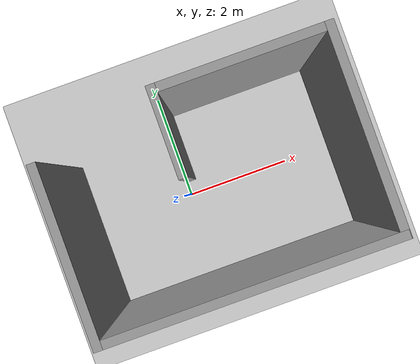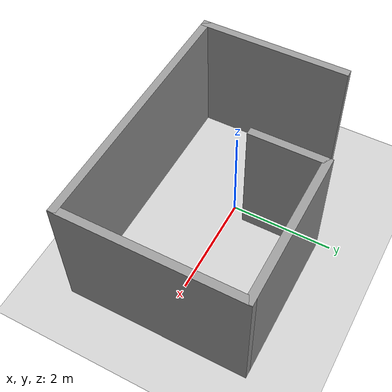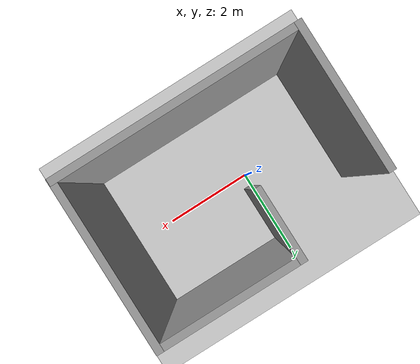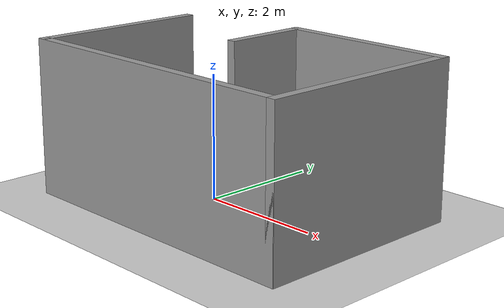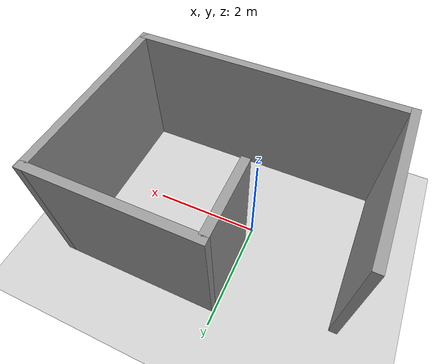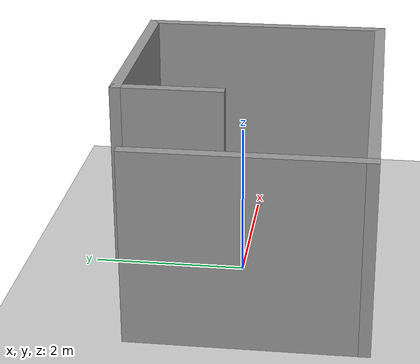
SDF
<?xml version="1.0"?>
<sdf version="1.6">
  <world name="default">

    <plugin
      filename="libgazebo_ros_factory.so"
      name="gazebo_ros_factory">
      <build_default_sdf>true</build_default_sdf>
      <robot_namespace>/</robot_namespace>
    </plugin>

    <include>
      <uri>model://ground_plane</uri>
    </include>

    <include>
      <uri>model://sun</uri>
    </include>

    <scene>
      <shadows>false</shadows>
    </scene>

    <gui fullscreen='0'>
      <camera name='user_camera'>
        <pose frame=''>0.319654 -0.235002 9.29441 0 1.5138 0.009599</pose>
        <view_controller>orbit</view_controller>
        <projection_type>perspective</projection_type>
      </camera>
    </gui>

    <physics type="ode">
      <real_time_update_rate>1000.0</real_time_update_rate>
      <max_step_size>0.001</max_step_size>
      <real_time_factor>1</real_time_factor>
      <ode>
        <solver>
          <type>quick</type>
          <iters>150</iters>
          <precon_iters>0</precon_iters>
          <sor>1.400000</sor>
          <use_dynamic_moi_rescaling>1</use_dynamic_moi_rescaling>
        </solver>
        <constraints>
          <cfm>0.00001</cfm>
          <erp>0.2</erp>
          <contact_max_correcting_vel>2000.000000</contact_max_correcting_vel>
          <contact_surface_layer>0.01000</contact_surface_layer>
        </constraints>
      </ode>
    </physics>

    <include>
      <uri>model://building_2</uri>
      <name>my_custom_building</name> <static>1</static> <pose>0 0 0 0 0 0</pose> </include>

  </world>
</sdf>

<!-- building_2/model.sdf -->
<sdf version='1.7'>
  <model name='building_2'>
    <pose>3.0475 0.14 0 0 -0 0</pose>
    <link name='Wall_0'>
      <collision name='Wall_0_Collision'>
        <geometry>
          <box>
            <size>3 0.15 2.5</size>
          </box>
        </geometry>
        <pose>0 0 1.25 0 -0 0</pose>
      </collision>
      <visual name='Wall_0_Visual'>
        <pose>0 0 1.25 0 -0 0</pose>
        <geometry>
          <box>
            <size>3 0.15 2.5</size>
          </box>
        </geometry>
        <material>
          <script>
            <uri>file://media/materials/scripts/gazebo.material</uri>
            <name>Gazebo/Grey</name>
          </script>
          <ambient>1 1 1 1</ambient>
        </material>
        <meta>
          <layer>0</layer>
        </meta>
      </visual>
      <pose>-1.9675 -0.255 0 0 -0 1.5708</pose>
    </link>
    <link name='Wall_12'>
      <collision name='Wall_12_Collision'>
        <geometry>
          <box>
            <size>1.5 0.15 2.5</size>
          </box>
        </geometry>
        <pose>0 0 1.25 0 -0 0</pose>
      </collision>
      <visual name='Wall_12_Visual'>
        <pose>0 0 1.25 0 -0 0</pose>
        <geometry>
          <box>
            <size>1.5 0.15 2.5</size>
          </box>
        </geometry>
        <material>
          <script>
            <uri>file://media/materials/scripts/gazebo.material</uri>
            <name>Gazebo/Grey</name>
          </script>
          <ambient>1 1 1 1</ambient>
        </material>
        <meta>
          <layer>0</layer>
        </meta>
      </visual>
      <pose>0.1125 1.005 0 0 -0 -1.5708</pose>
    </link>
    <link name='Wall_4'>
      <collision name='Wall_4_Collision'>
        <geometry>
          <box>
            <size>5.08 0.15 2.5</size>
          </box>
        </geometry>
        <pose>0 0 1.25 0 -0 0</pose>
      </collision>
      <visual name='Wall_4_Visual'>
        <pose>0 0 1.25 0 -0 0</pose>
        <geometry>
          <box>
            <size>5.08 0.15 2.5</size>
          </box>
        </geometry>
        <material>
          <script>
            <uri>file://media/materials/scripts/gazebo.material</uri>
            <name>Gazebo/Grey</name>
          </script>
          <ambient>1 1 1 1</ambient>
        </material>
        <meta>
          <layer>0</layer>
        </meta>
      </visual>
      <pose>0.4975 -1.68 0 0 -0 0</pose>
    </link>
    <link name='Wall_7'>
      <collision name='Wall_7_Collision'>
        <geometry>
          <box>
            <size>3.51 0.15 2.5</size>
          </box>
        </geometry>
        <pose>0 0 1.25 0 -0 0</pose>
      </collision>
      <visual name='Wall_7_Visual'>
        <pose>0 0 1.25 0 -0 0</pose>
        <geometry>
          <box>
            <size>3.51 0.15 2.5</size>
          </box>
        </geometry>
        <material>
          <script>
            <uri>file://media/materials/scripts/gazebo.material</uri>
            <name>Gazebo/Grey</name>
          </script>
          <ambient>1 1 1 1</ambient>
        </material>
        <meta>
          <layer>0</layer>
        </meta>
      </visual>
      <pose>2.9725 0 0 0 -0 1.5708</pose>
    </link>
    <link name='Wall_8'>
      <collision name='Wall_8_Collision'>
        <geometry>
          <box>
            <size>3 0.15 2.5</size>
          </box>
        </geometry>
        <pose>0 0 1.25 0 -0 0</pose>
      </collision>
      <visual name='Wall_8_Visual'>
        <pose>0 0 1.25 0 -0 0</pose>
        <geometry>
          <box>
            <size>3 0.15 2.5</size>
          </box>
        </geometry>
        <material>
          <script>
            <uri>file://media/materials/scripts/gazebo.material</uri>
            <name>Gazebo/Grey</name>
          </script>
          <ambient>1 1 1 1</ambient>
        </material>
        <meta>
          <layer>0</layer>
        </meta>
      </visual>
      <pose>1.5375 1.68 0 0 -0 3.14159</pose>
    </link>
    <static>1</static>
  </model>
</sdf>
